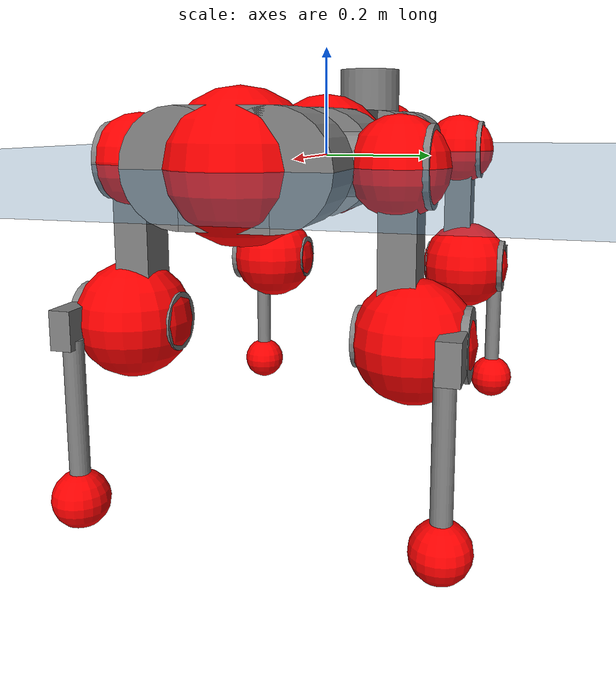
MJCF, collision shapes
<mujoco model="anymal_c">
  <compiler angle="radian" assetdir="assets" balanceinertia="true" inertiafromgeom="false"/>

  <option timestep="0.005" density="1.2" viscosity="2e-05"/>

  <size nkey="1"/>

  <visual>
    <quality shadowsize="8192"/>
    <map shadowclip="0.5"/>
  </visual>

  <default>
    <default class="/">
      <material specular="0" shininess="0.25"/>
      <geom contype="0" conaffinity="0" group="1" solref="-1000 -80"/>
      <site size="0.01 0.005 0.005" group="5"/>
      <general forcelimited="true" forcerange="-80 80" biastype="affine" gainprm="80" biasprm="0 -80 -2"/>
      <default class="anymal_c">
        <joint armature="0.01" damping="0.01" frictionloss="0.1"/>
        <default class="visual">
          <geom type="mesh" group="2"/>
          <default class="visual_zflip"/>
        </default>
        <default class="collision">
          <geom type="cylinder" group="3"/>
          <default class="foot">
            <geom size="0.03 0 0" type="sphere" condim="6" priority="1" friction="0.8 0.02 0.01" solimp="0.015 1 0.03"/>
          </default>
        </default>
      </default>
      <default class="reward_collision_sphere">
        <geom group="5" rgba="1 0 0 1"/>
      </default>
    </default>
  </default>

  <asset>
    <texture type="skybox" colorspace="auto" name="//unnamed_texture_0" builtin="gradient" rgb1="0.95 0.95 0.95" rgb2="0.95 0.95 0.95" width="100" height="600"/>
    <texture type="2d" colorspace="auto" name="texplane" builtin="checker" rgb1="0.345 0.575 0.748" rgb2="0.345 0.575 0.748" markrgb="1 1 1" width="512" height="512"/>
    <texture type="2d" colorspace="linear" name="base" file="base.png"/>
    <texture type="2d" colorspace="linear" name="top_shell" file="top_shell.png"/>
    <texture type="2d" colorspace="linear" name="bottom_shell" file="bottom_shell.png"/>
    <texture type="2d" colorspace="linear" name="remote" file="remote.png"/>
    <texture type="2d" colorspace="linear" name="hatch" file="hatch.png"/>
    <texture type="2d" colorspace="linear" name="handle" file="handle.png"/>
    <texture type="2d" colorspace="linear" name="face" file="face.png"/>
    <texture type="2d" colorspace="linear" name="battery" file="battery.png"/>
    <texture type="2d" colorspace="linear" name="lidar_cage" file="lidar_cage.png"/>
    <texture type="2d" colorspace="linear" name="depth_camera" file="depth_camera.png"/>
    <texture type="2d" colorspace="linear" name="wide_angle_camera" file="wide_angle_camera.png"/>
    <texture type="2d" colorspace="linear" name="lidar" file="lidar.png"/>
    <texture type="2d" colorspace="linear" name="drive" file="drive.png"/>
    <texture type="2d" colorspace="linear" name="hip_l" file="hip_l.png"/>
    <texture type="2d" colorspace="linear" name="shank_l" file="shank_l.png"/>
    <texture type="2d" colorspace="linear" name="foot" file="foot.png"/>
    <texture type="2d" colorspace="linear" name="thigh" file="thigh.png"/>
    <texture type="2d" colorspace="linear" name="shank_r" file="shank_r.png"/>
    <texture type="2d" colorspace="linear" name="hip_r" file="hip_r.png"/>
    <material name="MatPlane" class="/" texture="texplane" texuniform="true" texrepeat="2 2" specular="0.9" shininess="0.5"/>
    <material name="black_plastic" class="/" rgba="0.007 0.007 0.007 1"/>
    <material name="green" class="/" rgba="0.052 0.178 0.033 1"/>
    <material name="red" class="/" rgba="0.178 0.006 0.005 1"/>
    <material name="yellow" class="/" rgba="0.178 0.119 0.006 1"/>
    <material name="lwl" class="/" rgba="0.8 0.8 0.8 1"/>
    <material name="base" class="/" texture="base"/>
    <material name="top_shell" class="/" texture="top_shell"/>
    <material name="bottom_shell" class="/" texture="bottom_shell"/>
    <material name="hip_l" class="/" texture="hip_l"/>
    <material name="thigh" class="/" texture="thigh"/>
    <material name="shank_l" class="/" texture="shank_l"/>
    <material name="foot" class="/" texture="foot"/>
    <material name="hip_r" class="/" texture="hip_r"/>
    <material name="shank" class="/" texture="shank_r"/>
    <material name="hatch" class="/" texture="hatch"/>
    <material name="remote" class="/" texture="remote"/>
    <material name="handle" class="/" texture="handle"/>
    <material name="face" class="/" texture="face"/>
    <material name="depth_camera" class="/" texture="depth_camera"/>
    <material name="wide_angle_camera" class="/" texture="wide_angle_camera"/>
    <material name="battery" class="/" texture="battery"/>
    <material name="lidar_cage" class="/" texture="lidar_cage"/>
    <material name="lidar" class="/" texture="lidar"/>
    <material name="drive" class="/" texture="drive"/>
    <mesh name="base_0" class="/" file="base_0.obj"/>
    <mesh name="base_1" class="/" file="base_1.obj"/>
    <mesh name="base_2" class="/" file="base_2.obj"/>
    <mesh name="base_3" class="/" file="base_3.obj"/>
    <mesh name="base_4" class="/" file="base_4.obj"/>
    <mesh name="base_5" class="/" file="base_5.obj"/>
    <mesh name="top_shell" class="/" file="top_shell.obj"/>
    <mesh name="bottom_shell" class="/" file="bottom_shell.obj"/>
    <mesh name="remote" class="/" file="remote.obj"/>
    <mesh name="handle" class="/" file="handle.obj"/>
    <mesh name="face" class="/" file="face.obj"/>
    <mesh name="wide_angle_camera" class="/" file="wide_angle_camera.obj"/>
    <mesh name="depth_camera" class="/" file="depth_camera.obj"/>
    <mesh name="battery" class="/" file="battery.obj"/>
    <mesh name="lidar_cage" class="/" file="lidar_cage.obj"/>
    <mesh name="lidar" class="/" file="lidar.obj"/>
    <mesh name="drive" class="/" file="drive.obj"/>
    <mesh name="hip_l" class="/" file="hip_l.obj"/>
    <mesh name="thigh" class="/" file="thigh.obj"/>
    <mesh name="shank_l" class="/" file="shank_l.obj"/>
    <mesh name="foot" class="/" file="foot.obj"/>
    <mesh name="hip_r" class="/" file="hip_r.obj"/>
    <mesh name="hatch" class="/" file="hatch.obj"/>
    <mesh name="shank_r" class="/" file="shank_r.obj"/>
  </asset>

  <worldbody>
    <geom name="floor" class="/" size="100 100 0.125" type="plane" group="0" material="MatPlane"/>
    <light name="toplight_shadow" class="/" pos="0 0 5" dir="0.0990148 0.0990148 -0.990148" type="directional" ambient="0.04 0.04 0.04" diffuse="0.55 0.55 0.55" specular="0.12 0.12 0.12"/>
    <light name="toplight_fill" class="/" pos="0 0 5" dir="0.0990148 0.0990148 -0.990148" type="directional" castshadow="false" ambient="0.04 0.04 0.04" diffuse="0.3 0.3 0.3" specular="0.08 0.08 0.08"/>
    <body name="trunk" childclass="anymal_c" pos="-0.000408182 0.000360783 -0.000442899" quat="1 -0.000433236 -0.000308392 -6.99185e-05">
      <inertial pos="0.00136853 0.00195019 0.0403888" quat="0.504913 0.495998 0.500426 0.49862" mass="16.4752" diaginertia="0.54056 0.636431 0.135248"/>
      <joint name="//unnamed_joint_0" type="free" armature="0" damping="0" frictionloss="0"/>
      <geom name="//unnamed_geom_1" class="visual" material="green" mesh="base_0"/>
      <geom name="//unnamed_geom_2" class="visual" material="yellow" mesh="base_1"/>
      <geom name="//unnamed_geom_3" class="visual" material="red" mesh="base_2"/>
      <geom name="//unnamed_geom_4" class="visual" material="black_plastic" mesh="base_3"/>
      <geom name="//unnamed_geom_5" class="visual" material="lwl" mesh="base_4"/>
      <geom name="//unnamed_geom_6" class="visual" material="base" mesh="base_5"/>
      <geom name="trunk_1" class="collision" size="0.278735 0.0672809 0.086504" type="box"/>
      <geom name="trunk_2" class="collision" size="0.086504 0.0696838" pos="0.210061 0.0704093 0" quat="0.707107 0 0.707107 0"/>
      <geom name="trunk_3" class="collision" size="0.086504 0.0696838" pos="-0.210061 0.0704093 0" quat="0.707107 0 0.707107 0"/>
      <geom name="trunk_4" class="collision" size="0.086504 0.0696838" pos="0.210061 -0.0704093 0" quat="0.707107 0 0.707107 0"/>
      <geom name="trunk_5" class="collision" size="0.086504 0.0696838" pos="-0.210061 -0.0704093 0" quat="0.707107 0 0.707107 0"/>
      <geom name="//unnamed_geom_12" class="visual" material="top_shell" mesh="top_shell"/>
      <geom name="//unnamed_geom_13" class="visual" material="bottom_shell" mesh="bottom_shell"/>
      <geom name="//unnamed_geom_14" class="visual" material="remote" mesh="remote"/>
      <geom name="//unnamed_geom_15" class="visual" material="handle" mesh="handle"/>
      <geom name="//unnamed_geom_16" class="visual" pos="0.400323 0 0" quat="1 0 0 0" material="face" mesh="face"/>
      <geom name="trunk_6" class="collision" size="0.0528636 0.0672809 0.086504" pos="0.453441 0 0" type="box"/>
      <geom name="//unnamed_geom_18" class="collision" size="0.086504 0.0528636" pos="0.453441 0.0704093 0" quat="0.707107 0 0.707107 0"/>
      <geom name="//unnamed_geom_19" class="collision" size="0.086504 0.0528636" pos="0.453441 -0.0704093 0" quat="0.707107 0 0.707107 0"/>
      <geom name="//unnamed_geom_20" class="visual" pos="0.445858 0 -0.026215" quat="0.965926 0 0.258819 0" material="depth_camera" mesh="depth_camera"/>
      <geom name="//unnamed_geom_21" class="visual" pos="0.495454 0 0.01365" material="wide_angle_camera" mesh="wide_angle_camera"/>
      <geom name="//unnamed_geom_22" class="visual_zflip" pos="-0.400323 0 0" quat="0 0 0 1" material="face" mesh="face"/>
      <geom name="trunk_7" class="collision" size="0.0528636 0.0672809 0.086504" pos="-0.453441 0 0" quat="0 0 0 1" type="box"/>
      <geom name="//unnamed_geom_24" class="collision" size="0.086504 0.0528636" pos="-0.453441 -0.0704093 0" quat="0 -0.707107 0 0.707107"/>
      <geom name="//unnamed_geom_25" class="collision" size="0.086504 0.0528636" pos="-0.453441 0.0704093 0" quat="0 -0.707107 0 0.707107"/>
      <geom name="//unnamed_geom_26" class="visual" pos="-0.445858 0 -0.026215" quat="0 -0.258819 0 0.965926" material="depth_camera" mesh="depth_camera"/>
      <geom name="//unnamed_geom_27" class="visual_zflip" pos="-0.495454 0 0.01365" quat="0 0 0 1" material="wide_angle_camera" mesh="wide_angle_camera"/>
      <geom name="//unnamed_geom_28" class="visual" material="battery" mesh="battery"/>
      <geom name="//unnamed_geom_29" class="visual" pos="0 0.0774304 0.0268987" quat="0.683013 -0.183013 0.183013 0.683013" material="depth_camera" mesh="depth_camera"/>
      <geom name="//unnamed_geom_30" class="visual" pos="0 -0.0774304 0.0268987" quat="0.683013 0.183013 0.183013 -0.683013" material="depth_camera" mesh="depth_camera"/>
      <geom name="//unnamed_geom_31" class="visual" pos="-0.35155 0 0.067019" quat="1 0 0 0" material="lidar_cage" mesh="lidar_cage"/>
      <geom name="trunk_8" class="collision" size="0.0672809 0.0576693" pos="-0.35155 0 0.121728"/>
      <geom name="//unnamed_geom_33" class="visual" pos="-0.35155 1.57351e-05 0.129661" quat="0.707107 0 0 -0.707107" material="lidar" mesh="lidar"/>
      <geom name="//unnamed_geom_34" class="visual" pos="0.289642 0.104575 1.62194e-09" quat="0.258819 0.965926 0 0" material="drive" mesh="drive"/>
      <geom name="//unnamed_geom_35" class="visual" pos="0.289642 -0.104575 -1.62194e-09" quat="0.258819 -0.965926 0 0" material="drive" mesh="drive"/>
      <geom name="//unnamed_geom_36" class="visual" pos="-0.289642 0.104575 -1.62194e-09" quat="0 0 0.965926 -0.258819" material="drive" mesh="drive"/>
      <geom name="//unnamed_geom_37" class="visual" pos="-0.289642 -0.104575 1.62194e-09" quat="0 0 -0.965926 -0.258819" material="drive" mesh="drive"/>
      <geom name="//unnamed_geom_38" class="visual" pos="0.112032 0 0.0665631" quat="1 0 0 0" material="hatch" mesh="hatch"/>
      <geom name="//unnamed_geom_39" class="reward_collision_sphere" size="0.115339"/>
      <geom name="//unnamed_geom_40" class="reward_collision_sphere" size="0.115339" pos="0.434608 0 0"/>
      <geom name="//unnamed_geom_41" class="reward_collision_sphere" size="0.115339" pos="-0.434608 0 0"/>
      <site name="imu" pos="0.24283 0.0225135 0.0309036" size="0.00961156"/>
      <camera name="track" pos="0 -2.0117 0" quat="0.707107 0.707107 0 0" mode="trackcom"/>
      <camera name="ego_camera" pos="0.434608 0 -0.0364729" quat="-0.5 -0.5 0.5 0.5"/>
      <body name="LF_HIP" pos="0.289427 0.107632 0.00260253" quat="0.258873 0.965911 -0.000117362 0.000131688">
        <inertial pos="0.0533864 -0.0150285 -0.00797786" quat="-0.125268 0.710984 -0.135096 0.678645" mass="2.38482" diaginertia="0.00489394 0.00478362 0.00199952"/>
        <joint name="LF_HAA" pos="0 0 0" axis="0.999971 -0.00302155 0.00697445" range="-0.716452 0.54568" armature="0.00968158" damping="0" frictionloss="0.109602"/>
        <geom name="//unnamed_geom_42" class="visual" pos="0 9.54111e-05 -1.56712e-05" quat="0.258819 -0.965926 0 0" material="hip_l" mesh="hip_l"/>
        <geom name="//unnamed_geom_43" class="visual" pos="0.0578512 -0.070593 -0.0400614" quat="0.183013 -0.683013 0.683013 0.183013" material="drive" mesh="drive"/>
        <geom name="//unnamed_geom_44" class="collision" size="0.0480578 0.0672809" pos="0.0578512 -0.0120297 -0.00629614" quat="-0.353553 -0.612372 0.612372 -0.353553"/>
        <body name="LF_THIGH" pos="0.0559831 -0.0708104 -0.0372112" quat="0.182908 -0.683159 0.683008 0.182591">
          <inertial pos="0.0297929 -8.32786e-06 -0.222925" quat="0.993729 -0.00387502 -0.0713447 0.0860096" mass="2.70337" diaginertia="0.0250989 0.0300814 0.00251398"/>
          <joint name="LF_HFE" pos="0 0 0" axis="1 4.93585e-05 6.82921e-06" range="-3.20179 3.13516" armature="0.00853741" damping="0.0203261" frictionloss="0.096852"/>
          <geom name="//unnamed_geom_45" class="visual" pos="-0.000796866 -1.25567e-06 0" quat="0.707107 0 0 -0.707107" material="thigh" mesh="thigh"/>
          <geom name="//unnamed_geom_46" class="collision" size="0.0624751 0.0384462" pos="0.0386319 0 0" quat="0.5 0.5 -0.5 -0.5"/>
          <geom name="//unnamed_geom_47" class="collision" size="0.0360433 0.0288347 0.135825" pos="0.0289739 0 -0.128853" quat="0.707107 0 0 -0.707107" type="box"/>
          <geom name="//unnamed_geom_48" class="visual" pos="0.0968694 0 -0.25987" quat="1 0 0 0" material="drive" mesh="drive"/>
          <geom name="//unnamed_geom_49" class="collision" size="0.0480578 0.0672809" pos="0.0292636 0 -0.25987" quat="0.707107 0 0.707107 0"/>
          <geom name="//unnamed_geom_50" class="reward_collision_sphere" size="0.0768925" pos="0.0241449 0 0"/>
          <body name="LF_SHANK" pos="0.0986338 0.000176615 -0.260885" quat="1 5.55123e-05 -0.00012047 7.95241e-06">
            <inertial pos="0.00562808 -0.0624676 -0.0733655" quat="0.993359 -0.112028 -0.0041952 -0.0258773" mass="0.528995" diaginertia="0.00850555 0.00952859 0.000710804"/>
            <joint name="LF_KFE" pos="0 0 0" axis="0.999969 0.00735743 -0.00290042" range="-3.13643 3.19582" armature="0.00906057" damping="0.00515735" frictionloss="0.0969841"/>
            <geom name="//unnamed_geom_51" class="visual" pos="-0.000259841 -0.00138548 0" quat="0.707107 0 0 -0.707107" material="shank_l" mesh="shank_l"/>
            <geom name="LF_kfe_act" class="collision" size="0.0576693 0.0192231" pos="0.0193159 0 0" quat="0.5 0.5 -0.5 -0.5"/>
            <geom name="//unnamed_geom_53" class="collision" size="0.0552655 0.032439 0.018262" pos="0.0193159 -0.0578352 0" quat="0.5 0.5 -0.5 -0.5" type="box"/>
            <geom name="//unnamed_geom_54" class="visual" pos="0.0126037 -0.0889108 -0.308169" quat="0.382683 0 0 -0.92388" material="foot" mesh="foot"/>
            <geom name="LF_calf" class="collision" size="0.0168202 0.135765" pos="0.0126036 -0.0884643 -0.154084" quat="0.707107 0 0 -0.707107"/>
            <geom name="LF_foot" class="foot" size="0.0289163" pos="0.0126036 -0.0884643 -0.287653" quat="0.707107 0 0 -0.707107"/>
            <geom name="//unnamed_geom_57" class="reward_collision_sphere" size="0.0961156" pos="-0.0482898 0 0"/>
            <geom name="//unnamed_geom_58" class="reward_collision_sphere" size="0.0480578" pos="0.0126036 -0.0884643 -0.287653"/>
            <site name="LF_foot" class="foot" pos="0.0126036 -0.0884643 -0.287653" quat="0.707107 0 0 -0.707107" size="0.00961156"/>
          </body>
        </body>
      </body>
      <body name="RF_HIP" pos="0.287418 -0.103775 0.002696" quat="0.258841 -0.96592 4.51633e-05 6.27285e-05">
        <inertial pos="0.0524167 0.0159448 -0.00821337" quat="0.133977 0.678633 0.128177 0.710688" mass="2.42029" diaginertia="0.00482663 0.00498349 0.00202008"/>
        <joint name="RF_HAA" pos="0 0 0" axis="0.999932 0.00629688 -0.00983843" range="-0.502538 0.668349" armature="0.0102048" damping="0" frictionloss="0.109291"/>
        <geom name="//unnamed_geom_59" class="visual" pos="0 -9.54103e-05 -1.56712e-05" quat="0.258819 0.965926 0 0" material="hip_r" mesh="hip_r"/>
        <geom name="//unnamed_geom_60" class="visual" pos="0.0578512 0.070593 -0.0400614" quat="0.183013 0.683013 0.683013 -0.183013" material="drive" mesh="drive"/>
        <geom name="//unnamed_geom_61" class="collision" size="0.0480578 0.0672809" pos="0.0578512 0.0120297 -0.00629614" quat="-0.353553 0.612372 0.612372 0.353553"/>
        <body name="RF_THIGH" pos="0.0574771 0.0702482 -0.0398022" quat="0.183768 0.6829 0.683108 -0.18232">
          <inertial pos="0.0271415 -5.15658e-06 -0.225265" quat="0.991789 -0.00553705 -0.0856424 0.0948144" mass="2.80576" diaginertia="0.0251199 0.0299699 0.00272403"/>
          <joint name="RF_HFE" pos="0 0 0" axis="0.999997 -0.000829137 -0.00248161" stiffness="0.00873674" range="-3.14401 3.08182" armature="0.00824393" damping="0.0130506" frictionloss="0.0855083"/>
          <geom name="//unnamed_geom_62" class="visual" pos="-0.000796866 -1.25567e-06 0" quat="0.707107 0 0 -0.707107" material="thigh" mesh="thigh"/>
          <geom name="//unnamed_geom_63" class="collision" size="0.0624751 0.0384462" pos="0.0386319 0 0" quat="0.5 0.5 0.5 0.5"/>
          <geom name="//unnamed_geom_64" class="collision" size="0.0360433 0.0288347 0.135825" pos="0.0289739 0 -0.128853" quat="0.707107 0 0 0.707107" type="box"/>
          <geom name="//unnamed_geom_65" class="visual" pos="0.0968694 0 -0.25987" quat="1 0 0 0" material="drive" mesh="drive"/>
          <geom name="//unnamed_geom_66" class="collision" size="0.0480578 0.0672809" pos="0.0292636 0 -0.25987" quat="0.707107 0 0.707107 0"/>
          <geom name="//unnamed_geom_67" class="reward_collision_sphere" size="0.0768925" pos="0.0241449 0 0"/>
          <body name="RF_SHANK" pos="0.0958492 0.00115798 -0.260182" quat="1 -0.000171728 -4.89732e-05 0.000320271">
            <inertial pos="0.00440077 0.0603688 -0.0711215" quat="0.992954 0.115733 -0.00107041 0.025445" mass="0.51425" diaginertia="0.00851959 0.00955807 0.000670889"/>
            <joint name="RF_KFE" pos="0 0 0" axis="0.999998 0.00175479 -0.00133946" range="-3.14471 3.1441" armature="0.00936641" damping="0" frictionloss="0.0828138"/>
            <geom name="//unnamed_geom_68" class="visual" pos="-0.000259839 0.00138548 0" quat="0.707107 0 0 0.707107" material="shank" mesh="shank_r"/>
            <geom name="RF_kfe_act" class="collision" size="0.0576693 0.0192231" pos="0.0193159 0 0" quat="0.5 0.5 0.5 0.5"/>
            <geom name="//unnamed_geom_70" class="collision" size="0.0552655 0.032439 0.018262" pos="0.0193159 0.0578352 0" quat="0.5 0.5 0.5 0.5" type="box"/>
            <geom name="//unnamed_geom_71" class="visual" pos="0.0126036 0.0889108 -0.308169" quat="0.382683 0 0 0.92388" material="foot" mesh="foot"/>
            <geom name="RF_calf" class="collision" size="0.0168202 0.135765" pos="0.0126036 0.0884643 -0.154084" quat="0.707107 0 0 0.707107"/>
            <geom name="RF_foot" class="foot" size="0.0273906" pos="0.0126036 0.0884643 -0.287653" quat="0.707107 0 0 0.707107"/>
            <geom name="//unnamed_geom_74" class="reward_collision_sphere" size="0.0961156" pos="-0.0482898 0 0"/>
            <geom name="//unnamed_geom_75" class="reward_collision_sphere" size="0.0480578" pos="0.0126036 0.0884643 -0.287653"/>
            <site name="RF_foot" class="foot" pos="0.0126036 0.0884643 -0.287653" quat="0.707107 0 0 0.707107" size="0.00961156"/>
          </body>
        </body>
      </body>
      <body name="LH_HIP" pos="-0.289658 0.1025 0.00284066" quat="0.000398337 0.000958808 0.965769 -0.259401">
        <inertial pos="0.0530699 0.0139143 -0.00798329" quat="0.144667 0.675415 0.121816 0.712774" mass="2.40062" diaginertia="0.00458566 0.00503755 0.00194282"/>
        <joint name="LH_HAA" pos="0 0 0" axis="0.99996 -0.00258361 0.00855131" range="-0.525207 0.744988" armature="0.0104844" damping="9.03691e-05" frictionloss="0.0937906"/>
        <geom name="//unnamed_geom_76" class="visual" pos="0 -9.54103e-05 -1.56712e-05" quat="-0.258819 -0.965926 0 0" material="hip_r" mesh="hip_r"/>
        <geom name="//unnamed_geom_77" class="visual" pos="0.0578512 0.070593 -0.0400614" quat="0.183013 0.683013 0.683013 -0.183013" material="drive" mesh="drive"/>
        <geom name="//unnamed_geom_78" class="collision" size="0.0480578 0.0672809" pos="0.0578512 0.0120297 -0.00629614" quat="-0.353553 0.612372 0.612372 0.353553"/>
        <body name="LH_THIGH" pos="0.057933 0.0713279 -0.0398235" quat="0.183331 0.683901 0.682082 -0.182845">
          <inertial pos="0.0297293 -0.00258048 -0.22393" quat="0.992719 -0.00520777 -0.0805518 0.0894095" mass="2.74693" diaginertia="0.0256223 0.0305604 0.00271056"/>
          <joint name="LH_HFE" pos="0 0 0" axis="0.999998 0.00158846 -0.000979212" stiffness="0.0111252" range="-3.19702 3.12071" armature="0.00920043" damping="0.00940024" frictionloss="0.108987"/>
          <geom name="//unnamed_geom_79" class="visual" pos="-0.000796866 -1.25567e-06 0" quat="0.707107 0 0 -0.707107" material="thigh" mesh="thigh"/>
          <geom name="//unnamed_geom_80" class="collision" size="0.0624751 0.0384462" pos="0.0386319 0 0" quat="0.5 0.5 -0.5 -0.5"/>
          <geom name="//unnamed_geom_81" class="collision" size="0.0360433 0.0288347 0.135825" pos="0.0289739 0 -0.128853" quat="0.707107 0 0 -0.707107" type="box"/>
          <geom name="//unnamed_geom_82" class="visual" pos="0.0968694 0 -0.25987" quat="1 0 0 0" material="drive" mesh="drive"/>
          <geom name="//unnamed_geom_83" class="collision" size="0.0480578 0.0672809" pos="0.0292636 0 -0.25987" quat="0.707107 0 0.707107 0"/>
          <geom name="//unnamed_geom_84" class="reward_collision_sphere" size="0.0768925" pos="0.0241449 0 0"/>
          <body name="LH_SHANK" pos="0.0944062 -0.0018127 -0.260664" quat="0.999999 0.000323634 0.000720194 -0.00085436">
            <inertial pos="0.00465604 0.0641061 -0.0736862" quat="0.99268 0.117369 -0.00720456 0.0275406" mass="0.499309" diaginertia="0.00829598 0.00888464 0.000704985"/>
            <joint name="LH_KFE" pos="0 0 0" axis="0.999988 0.00324302 -0.00368477" range="-3.14492 3.14635" armature="0.0102162" damping="0.00866515" frictionloss="0.0937007"/>
            <geom name="//unnamed_geom_85" class="visual" pos="-0.000259839 0.00138548 0" quat="-0.707107 0 0 -0.707107" material="shank" mesh="shank_r"/>
            <geom name="LH_kfe_act" class="collision" size="0.0576693 0.0192231" pos="0.0193159 0 0" quat="0.5 0.5 -0.5 -0.5"/>
            <geom name="//unnamed_geom_87" class="collision" size="0.0552655 0.032439 0.018262" pos="0.0193159 0.0578352 0" quat="0.5 0.5 -0.5 -0.5" type="box"/>
            <geom name="//unnamed_geom_88" class="visual" pos="0.0126036 0.0889108 -0.308169" quat="-0.382683 0 0 -0.92388" material="foot" mesh="foot"/>
            <geom name="LH_calf" class="collision" size="0.0168202 0.135765" pos="0.0126036 0.0884643 -0.154084" quat="0.707107 0 0 -0.707107"/>
            <geom name="LH_foot" class="foot" size="0.0320356" pos="0.0126036 0.0884643 -0.287653" quat="0.707107 0 0 -0.707107"/>
            <geom name="//unnamed_geom_91" class="reward_collision_sphere" size="0.0961156" pos="-0.0482898 0 0"/>
            <geom name="//unnamed_geom_92" class="reward_collision_sphere" size="0.0480578" pos="0.0126036 0.0884643 -0.287653"/>
            <site name="LH_foot" class="foot" pos="0.0126036 0.0884643 -0.287653" quat="0.707107 0 0 -0.707107" size="0.00961156"/>
          </body>
        </body>
      </body>
      <body name="RH_HIP" pos="-0.289761 -0.105021 0.00182344" quat="-0.000184423 -6.54653e-05 -0.965959 -0.258696">
        <inertial pos="0.0526115 -0.018248 -0.00771394" quat="-0.123554 0.707431 -0.137351 0.68221" mass="2.49507" diaginertia="0.00500374 0.00505184 0.00215887"/>
        <joint name="RH_HAA" pos="0 0 0" axis="0.999999 0.000446712 -0.00129653" range="-0.77987 0.495625" armature="0.00965134" damping="0.0115135" frictionloss="0.095458"/>
        <geom name="//unnamed_geom_93" class="visual" pos="0 9.54111e-05 -1.56712e-05" quat="-0.258819 0.965926 0 0" material="hip_l" mesh="hip_l"/>
        <geom name="//unnamed_geom_94" class="visual" pos="0.0578512 -0.070593 -0.0400614" quat="-0.183013 0.683013 -0.683013 -0.183013" material="drive" mesh="drive"/>
        <geom name="//unnamed_geom_95" class="collision" size="0.0480578 0.0672809" pos="0.0578512 -0.0120297 -0.00629614" quat="0.353553 0.612372 -0.612372 0.353553"/>
        <body name="RH_THIGH" pos="0.0582353 -0.0718183 -0.0400853" quat="-0.183004 0.683129 -0.682899 -0.18301">
          <inertial pos="0.0326514 -0.00290899 -0.225476" quat="0.9926 -0.0179002 -0.0809724 0.0887085" mass="2.66133" diaginertia="0.025368 0.0300742 0.00261042"/>
          <joint name="RH_HFE" pos="0 0 0" axis="0.999919 -0.012639 0.00149583" range="-3.14811 3.09774" armature="0.00962414" damping="0" frictionloss="0.089321"/>
          <geom name="//unnamed_geom_96" class="visual" pos="-0.000796866 -1.25567e-06 0" quat="0.707107 0 0 -0.707107" material="thigh" mesh="thigh"/>
          <geom name="//unnamed_geom_97" class="collision" size="0.0624751 0.0384462" pos="0.0386319 0 0" quat="0.5 0.5 0.5 0.5"/>
          <geom name="//unnamed_geom_98" class="collision" size="0.0360433 0.0288347 0.135825" pos="0.0289739 0 -0.128853" quat="0.707107 0 0 0.707107" type="box"/>
          <geom name="//unnamed_geom_99" class="visual" pos="0.0968694 0 -0.25987" quat="1 0 0 0" material="drive" mesh="drive"/>
          <geom name="//unnamed_geom_100" class="collision" size="0.0480578 0.0672809" pos="0.0292636 0 -0.25987" quat="0.707107 0 0.707107 0"/>
          <geom name="//unnamed_geom_101" class="reward_collision_sphere" size="0.0768925" pos="0.0241449 0 0"/>
          <body name="RH_SHANK" pos="0.0963222 0.00279517 -0.261613" quat="1 2.72338e-05 -0.000133908 8.62644e-05">
            <inertial pos="0.00747546 -0.0610485 -0.0733561" quat="0.992318 -0.120205 -0.00362646 -0.0290315" mass="0.536991" diaginertia="0.00882831 0.0101914 0.00072075"/>
            <joint name="RH_KFE" pos="0 0 0" axis="1 0.000391814 0.000157926" range="-3.09881 3.11159" armature="0.0096924" damping="0.000317924" frictionloss="0.0887476"/>
            <geom name="//unnamed_geom_102" class="visual" pos="-0.000259841 -0.00138548 0" quat="0.707107 0 0 -0.707107" material="shank_l" mesh="shank_l"/>
            <geom name="RH_kfe_act" class="collision" size="0.0576693 0.0192231" pos="0.0193159 0 0" quat="0.5 0.5 0.5 0.5"/>
            <geom name="//unnamed_geom_104" class="collision" size="0.0552655 0.032439 0.018262" pos="0.0193159 -0.0578352 0" quat="0.5 0.5 0.5 0.5" type="box"/>
            <geom name="//unnamed_geom_105" class="visual" pos="0.0126037 -0.0889108 -0.308169" quat="0.382683 0 0 -0.92388" material="foot" mesh="foot"/>
            <geom name="RH_calf" class="collision" size="0.0168202 0.135765" pos="0.0126036 -0.0884643 -0.154084" quat="0.707107 0 0 0.707107"/>
            <geom name="RH_foot" class="foot" size="0.023052" pos="0.0126036 -0.0884643 -0.287653" quat="0.707107 0 0 0.707107"/>
            <geom name="//unnamed_geom_108" class="reward_collision_sphere" size="0.0961156" pos="-0.0482898 0 0"/>
            <geom name="//unnamed_geom_109" class="reward_collision_sphere" size="0.0480578" pos="0.0126036 -0.0884643 -0.287653"/>
            <site name="RH_foot" class="foot" pos="0.0126036 -0.0884643 -0.287653" quat="0.707107 0 0 0.707107" size="0.00961156"/>
          </body>
        </body>
      </body>
    </body>
  </worldbody>

  <contact>
    <pair class="/" geom1="floor" geom2="LF_foot" name="//unnamed_contact_0"/>
    <pair class="/" geom1="floor" geom2="RF_foot" name="//unnamed_contact_1"/>
    <pair class="/" geom1="floor" geom2="LH_foot" name="//unnamed_contact_2"/>
    <pair class="/" geom1="floor" geom2="RH_foot" name="//unnamed_contact_3"/>
  </contact>

  <actuator>
    <general name="LF_HAA" class="/" joint="LF_HAA" forcerange="-77.1952 77.1952" gainprm="77.6853" biasprm="0 -77.6853 -1.8355"/>
    <general name="LF_HFE" class="/" joint="LF_HFE" forcerange="-79.1065 79.1065" gainprm="77.6853" biasprm="0 -77.6853 -1.8355"/>
    <general name="LF_KFE" class="/" joint="LF_KFE" forcerange="-85.2515 85.2515" gainprm="77.6853" biasprm="0 -77.6853 -1.8355"/>
    <general name="RF_HAA" class="/" joint="RF_HAA" forcerange="-77.7203 77.7203" gainprm="77.6853" biasprm="0 -77.6853 -1.8355"/>
    <general name="RF_HFE" class="/" joint="RF_HFE" forcerange="-87.1359 87.1359" gainprm="77.6853" biasprm="0 -77.6853 -1.8355"/>
    <general name="RF_KFE" class="/" joint="RF_KFE" forcerange="-76.7771 76.7771" gainprm="77.6853" biasprm="0 -77.6853 -1.8355"/>
    <general name="LH_HAA" class="/" joint="LH_HAA" forcerange="-77.619 77.619" gainprm="77.6853" biasprm="0 -77.6853 -1.8355"/>
    <general name="LH_HFE" class="/" joint="LH_HFE" forcerange="-75.4505 75.4505" gainprm="77.6853" biasprm="0 -77.6853 -1.8355"/>
    <general name="LH_KFE" class="/" joint="LH_KFE" forcerange="-81.0524 81.0524" gainprm="77.6853" biasprm="0 -77.6853 -1.8355"/>
    <general name="RH_HAA" class="/" joint="RH_HAA" forcerange="-76.984 76.984" gainprm="77.6853" biasprm="0 -77.6853 -1.8355"/>
    <general name="RH_HFE" class="/" joint="RH_HFE" forcerange="-71.4045 71.4045" gainprm="77.6853" biasprm="0 -77.6853 -1.8355"/>
    <general name="RH_KFE" class="/" joint="RH_KFE" forcerange="-85.3166 85.3166" gainprm="77.6853" biasprm="0 -77.6853 -1.8355"/>
  </actuator>

  <sensor>
    <gyro site="imu" name="imu_angular_velocity"/>
    <velocimeter site="imu" name="imu_linear_velocity"/>
    <framelinvel objtype="site" objname="LF_foot" name="LF_foot_global_linear_velocity"/>
    <framelinvel objtype="site" objname="RF_foot" name="RF_foot_global_linear_velocity"/>
    <framelinvel objtype="site" objname="LH_foot" name="LH_foot_global_linear_velocity"/>
    <framelinvel objtype="site" objname="RH_foot" name="RH_foot_global_linear_velocity"/>
  </sensor>

  <keyframe>
    <key name="home" qpos="0 0 0.55 1 0 0 0 0 0.4 -0.8 0 -0.4 0.8 0 -0.4 0.8 0 0.4 -0.8"/>
  </keyframe>
</mujoco>
